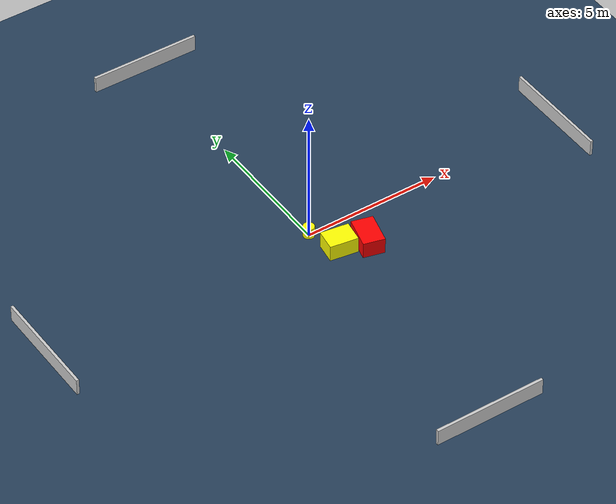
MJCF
<?xml version="1.0" ?>
<mujoco model="generated_environment">
  <option timestep="0.01" integrator="RK4" cone="elliptic"/>
  <default>
    <geom density="1"/>
  </default>
  <asset>
    <texture builtin="gradient" height="3072" name="skybox" rgb1="0.3 0.5 0.7" rgb2="0 0 0" type="skybox" width="512"/>
    <texture builtin="checker" height="300" name="groundplane" rgb1="0.2 0.3 0.4" rgb2="0.1 0.2 0.3" type="2d" width="300"/>
    <material name="groundplane" reflectance="0.2" texrepeat="5 5" texture="groundplane"/>
  </asset>
  <worldbody>
    <light dir="0 0 -1" directional="true" pos="0 0 1.5"/>
    <geom condim="3" friction="0.5 0.005 0.001" material="groundplane" name="floor" pos="0 0 0" size="0 0 0.05" type="plane"/>
    <body name="walls">
      <geom name="wall_1" condim="4" pos="-10.0 0.0 0.3" rgba="0.800000011920929 0.800000011920929 0.800000011920929 1.0" size="0.05 2.0 0.3" type="box"/>
      <geom name="wall_2" condim="4" pos="10.0 0.0 0.3" rgba="0.800000011920929 0.800000011920929 0.800000011920929 1.0" size="0.05 2.0 0.3" type="box"/>
      <geom name="wall_3" condim="4" pos="0.0 -10.0 0.3" rgba="0.800000011920929 0.800000011920929 0.800000011920929 1.0" size="2.0 0.05 0.3" type="box"/>
      <geom name="wall_4" condim="4" pos="0.0 10.0 0.3" rgba="0.800000011920929 0.800000011920929 0.800000011920929 1.0" size="2.0 0.05 0.3" type="box"/>
    </body>
    <body name="robot">
      <joint name="joint_x" type="slide" pos="0 0 0" axis="1 0 0"/>
      <joint name="joint_y" type="slide" pos="0 0 0" axis="0 1 0"/>
      <geom name="robot" type="cylinder" pos="0.0 0.0 0.2" size="0.2 0.2 0.0" mass="5.0" friction="1.0 0.005 0.0001" condim="4" rgba="1.0 1.0 0.0 1.0"/>
    </body>
    <body name="obstacle_1_movable">
      <geom name="obstacle_1_movable" condim="4" pos="0.45457082294805534 -1.0926488667750311 0.3" euler="0 0 351.6258208993076" friction="0.0 0.005 0.001" rgba="1.0 1.0 0.0 1.0" size="0.5097756872291903 0.38433150506032865 0.3" type="box" mass="0.1"/>
      <joint type="free"/>
    </body>
    <body name="obstacle_2_static">
      <geom name="obstacle_2_static" condim="4" pos="1.3666126225211426 -1.4089313629709521 0.3" euler="0 0 255.8336700570781" friction="0.0 0.005 0.001" rgba="1.0 0.0 0.0 1.0" size="0.5780445110107462 0.3842386559103187 0.3" type="box"/>
    </body>
  </worldbody>
  <actuator>
    <motor name="actuator_x" joint="joint_x" gear="1" ctrlrange="-1 1"/>
    <motor name="actuator_y" joint="joint_y" gear="1" ctrlrange="-1 1"/>
  </actuator>
</mujoco>
